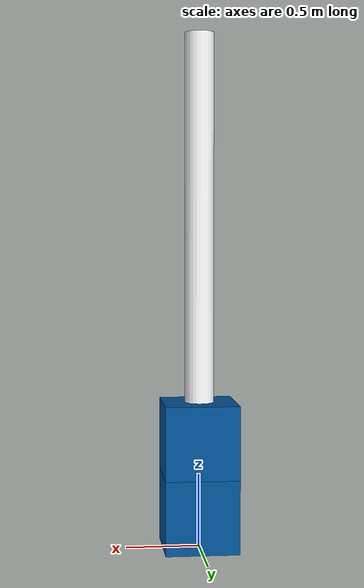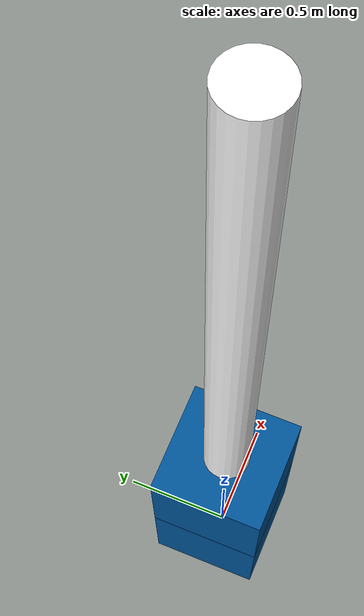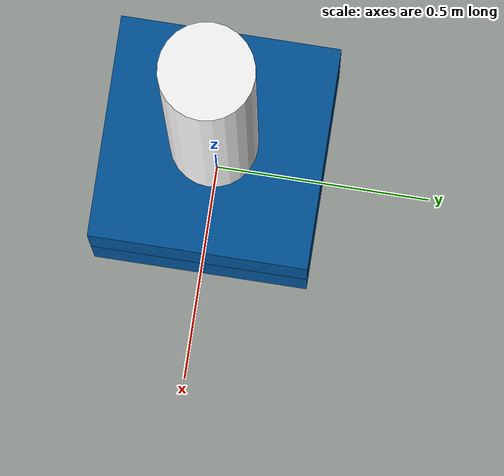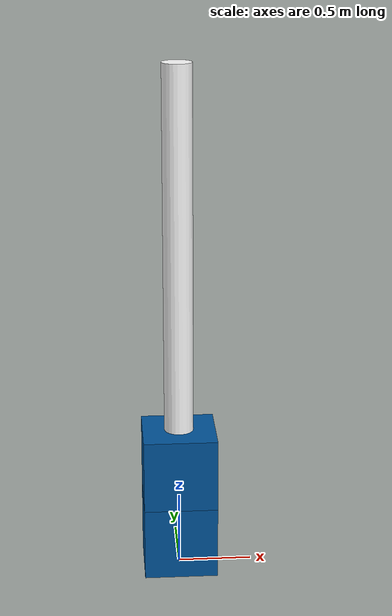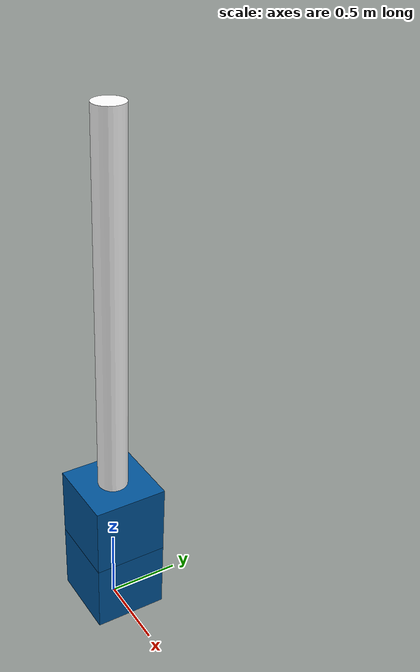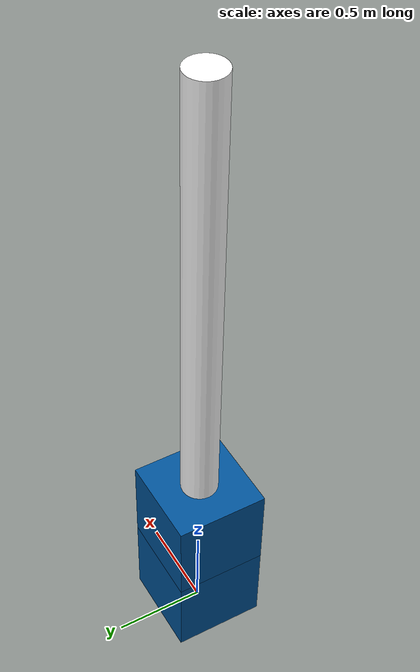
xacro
<?xml version="1.0"?>
<robot name="example_robot" xmlns:xacro="http://www.ros.org/wiki/xacro">
    <xacro:arg name="robot_ns" default=""/>

    <!-- Prepend robot namespace if set -->
    <xacro:property name="prefix" value="$(arg robot_ns)/"/>
    <xacro:if value="${prefix == '/'}">
        <xacro:property name="prefix" value=""/>
    </xacro:if>

    <link name="${prefix}link_1">
        <visual>
            <origin xyz="0 0 0.25" rpy="0 0 0" />
            <geometry>
                <box size="0.5 0.5 0.5" />
            </geometry>
            <material name="blue">
                <color rgba="0.0 0.3294 0.6039 1.0"/>
            </material>
        </visual>
        <collision>
            <origin xyz="0 0 0" rpy="0 0 0" />
            <geometry>
                <box size="0.5 0.5 0.5" />
            </geometry>
        </collision>
    </link>

    <link name="${prefix}link_2">
        <visual>
            <origin xyz="0 0 1.75" rpy="0 0 0" />
            <geometry>
                <cylinder length="3.0" radius="0.1" />
            </geometry>
            <material name="white">
                <color rgba="1.0 1.0 1.0 1.0"/>
            </material>
        </visual>
        <collision>
            <origin xyz="0 0 1.5" rpy="0 0 0" />
            <geometry>
                <cylinder length="3.0" radius="0.1" />
            </geometry>
        </collision>
    </link>

    <joint name="${prefix}joint_1" type="fixed">
        <origin xyz="0 0 0.25" rpy ="0 0 0" />
        <parent link="${prefix}link_1"/>
        <child link="${prefix}link_2" />
        <axis xyz="0 0 1" />
    </joint>

    <link name="${prefix}link_3">
        <visual>
            <origin xyz="0 0 0.0" rpy="0 0 0" />
            <geometry>
                <box size="0.5 0.5 0.5" />
            </geometry>
            <material name="blue">
                <color rgba="0.0 0.3294 0.6039 1.0"/>
            </material>
        </visual>
        <collision>
            <origin xyz="0 0 0.5" rpy="0 0 0" />
            <geometry>
                <box size="0.5 0.5 0.5" />
            </geometry>
        </collision>
    </link>

    <joint name="${prefix}joint_2" type="prismatic">
        <origin xyz="0 0 0.5" rpy ="0 0 0" />
        <parent link="${prefix}link_2"/>
        <child link="${prefix}link_3" />
        <axis xyz="0 0 1" />
        <limit
            lower="0.0"
            upper="2.5"
            effort="1000.0"
            velocity="1000.0"
        />
    </joint>
</robot>
